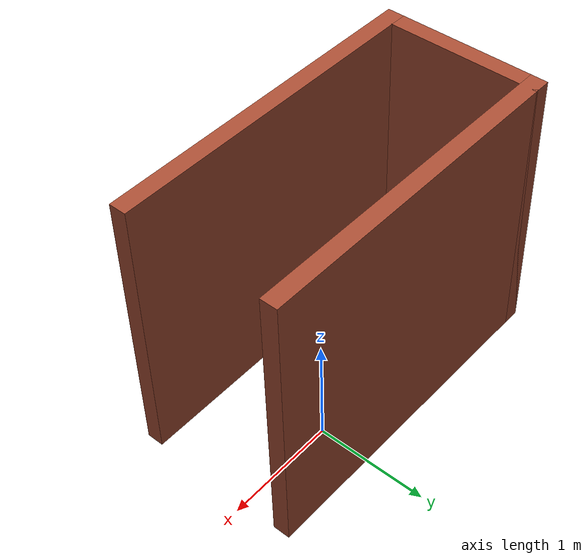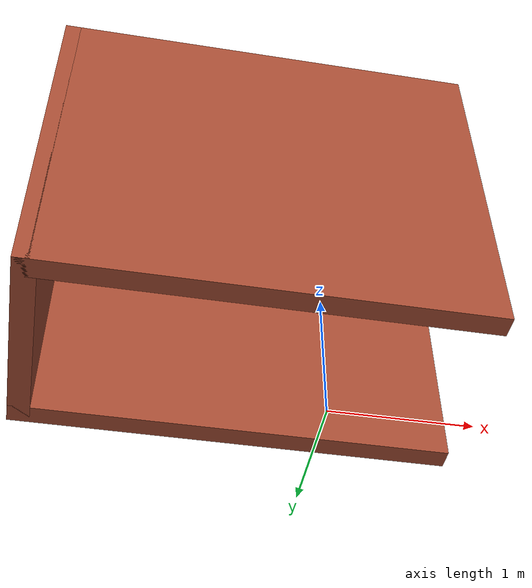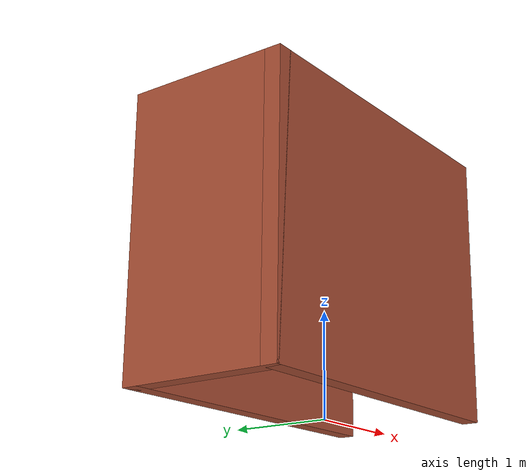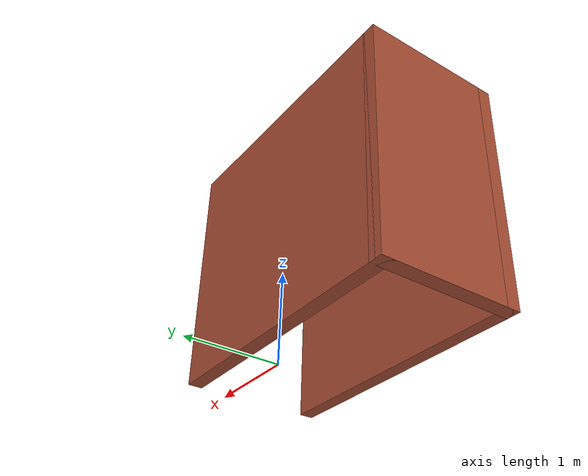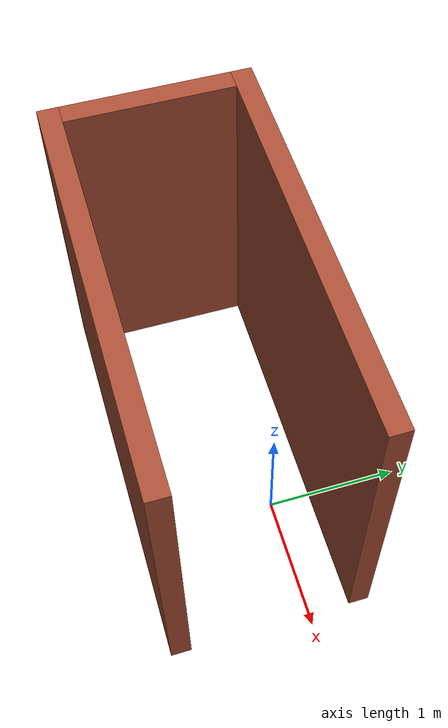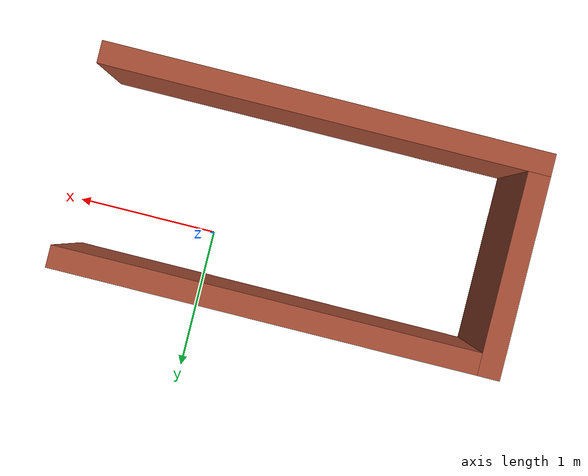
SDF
<?xml version='1.0'?>
<sdf version='1.6'>
  <model name='Hallway'>
    <pose frame=''>-0.574731 -0.292428 0 0 -0 0</pose>
    <link name='Wall_21'>
      <collision name='Wall_21_Collision'>
        <geometry>
          <box>
            <size>3 0.15 2.5</size>
          </box>
        </geometry>
        <pose frame=''>0 0 1.25 0 -0 0</pose>
      </collision>
      <visual name='Wall_21_Visual'>
        <pose frame=''>0 0 1.25 0 -0 0</pose>
        <geometry>
          <box>
            <size>3 0.15 2.5</size>
          </box>
        </geometry>
        <material>
          <script>
            <uri>file://media/materials/scripts/gazebo.material</uri>
            <name>Gazebo/Bricks</name>
          </script>
          <ambient>1 1 1 1</ambient>
        </material>
        <meta>
          <layer>0</layer>
        </meta>
      </visual>
      <pose frame=''>0 -0.675 0 0 -0 0</pose>
    </link>
    <link name='Wall_23'>
      <collision name='Wall_23_Collision'>
        <geometry>
          <box>
            <size>1.5 0.15 2.5</size>
          </box>
        </geometry>
        <pose frame=''>0 0 1.25 0 -0 0</pose>
      </collision>
      <visual name='Wall_23_Visual'>
        <pose frame=''>0 0 1.25 0 -0 0</pose>
        <geometry>
          <box>
            <size>1.5 0.15 2.5</size>
          </box>
        </geometry>
        <material>
          <script>
            <uri>file://media/materials/scripts/gazebo.material</uri>
            <name>Gazebo/Bricks</name>
          </script>
          <ambient>1 1 1 1</ambient>
        </material>
        <meta>
          <layer>0</layer>
        </meta>
      </visual>
      <pose frame=''>-1.425 0 0 0 -0 1.5708</pose>
    </link>
    <link name='Wall_24'>
      <collision name='Wall_24_Collision'>
        <geometry>
          <box>
            <size>3 0.15 2.5</size>
          </box>
        </geometry>
        <pose frame=''>0 0 1.25 0 -0 0</pose>
      </collision>
      <visual name='Wall_24_Visual'>
        <pose frame=''>0 0 1.25 0 -0 0</pose>
        <geometry>
          <box>
            <size>3 0.15 2.5</size>
          </box>
        </geometry>
        <material>
          <script>
            <uri>file://media/materials/scripts/gazebo.material</uri>
            <name>Gazebo/Bricks</name>
          </script>
          <ambient>1 1 1 1</ambient>
        </material>
        <meta>
          <layer>0</layer>
        </meta>
      </visual>
      <pose frame=''>0 0.675 0 0 -0 0</pose>
    </link>
    <static>1</static>
  </model>
</sdf>
